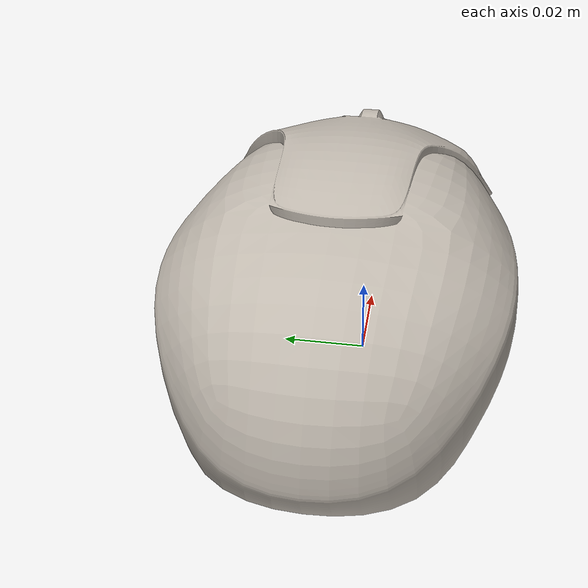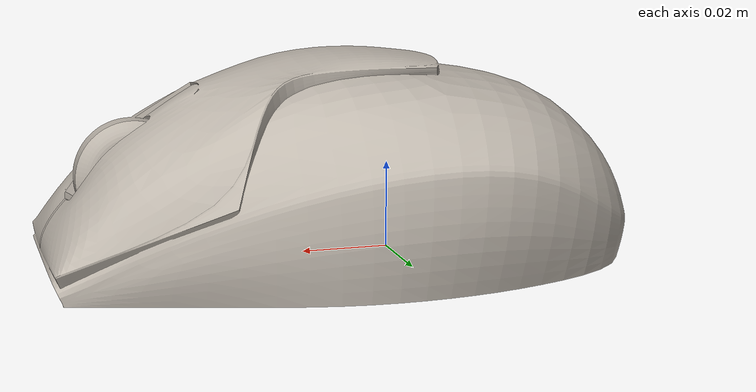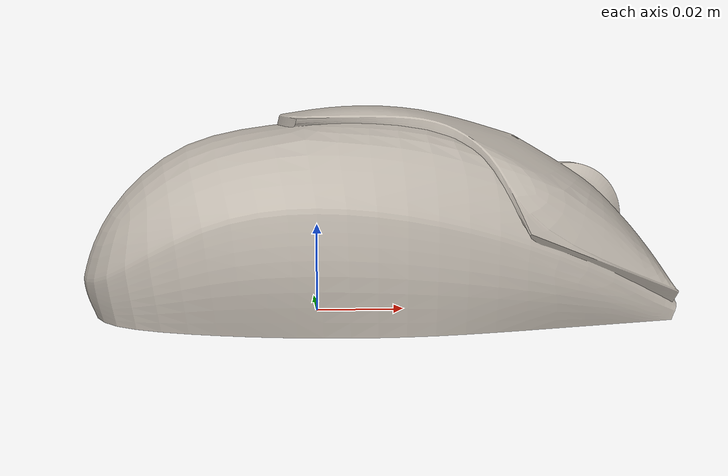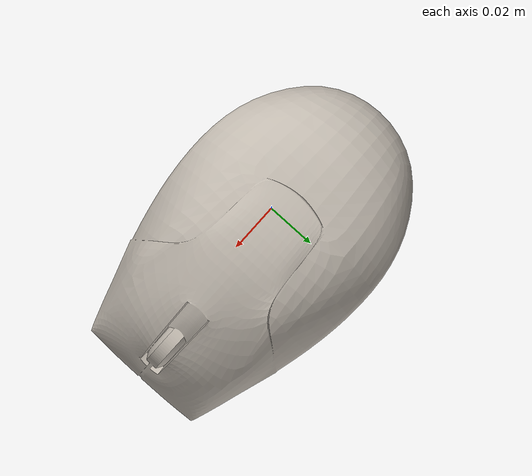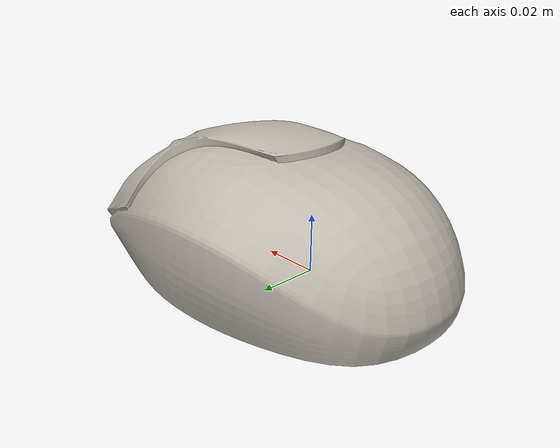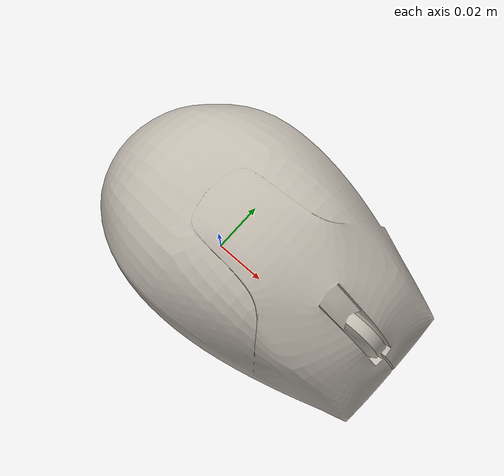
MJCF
<mujoco model="mouse">
  <asset>
    <mesh file="meshes/mouse.obj" name="mouse_mesh" scale="0.011 0.011 0.011"/>
    <texture file="../textures/mouse.png" name="tex-mouse" type="2d"/>
    <material name="mouse" reflectance="0.5" texrepeat="1 1" texture="tex-mouse" texuniform="true"/>
  </asset>
  <worldbody>
    <body>
      <body name="object">
        <geom pos="0 0 0" mesh="mouse_mesh" type="mesh" solimp="0.998 0.998 0.001" solref="0.001 1" density="100" friction="0.95 0.3 0.1" material="mouse" group="0" condim="4"/>
      </body>
      <site rgba="0 0 0 0" size="0.005" pos="0 0 -0.085" name="bottom_site"/>
      <site rgba="0 0 0 0" size="0.005" pos="0 0 0.075" name="top_site"/>
      <site rgba="0 0 0 0" size="0.005" pos="0.025 0.025 0" name="horizontal_radius_site"/>
    </body>
  </worldbody>
</mujoco>
